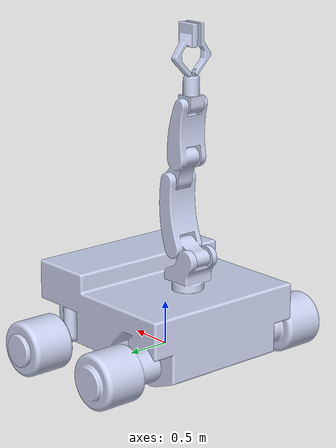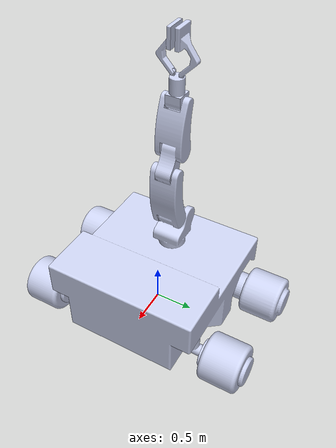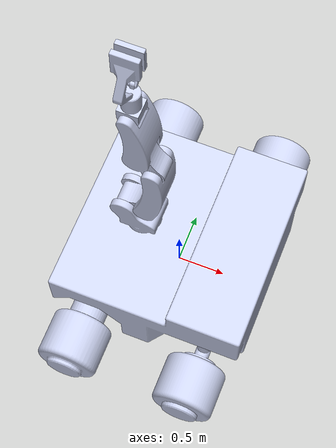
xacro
<?xml version="1.0" encoding="utf-8"?>
<robot
  name="robot_arm">
  <link
    name="base_link">
    <inertial>
      <origin
        xyz="0.05079 0.43644 -3.929E-09"
        rpy="0 0 0" />
      <mass
        value="273.23" />
      <inertia
        ixx="160.51"
        ixy="-15.419"
        ixz="-3.821E-06"
        iyy="285.82"
        iyz="-2.0854E-06"
        izz="189.48" />
    </inertial>
    <visual>
      <origin
        xyz="0 0 0"
        rpy="0 0 0" />
      <geometry>
        <mesh
          filename="package://robot_arm/meshes/base_link.STL" />
      </geometry>
      <material
        name="">
        <color
          rgba="0.79216 0.81961 0.93333 1" />
      </material>
    </visual>
    <collision>
      <origin
        xyz="0 0 0"
        rpy="0 0 0" />
      <geometry>
        <mesh
          filename="package://robot_arm/meshes/base_link.STL" />
      </geometry>
    </collision>
  </link>
  <link
    name="rear_transmission">
    <inertial>
      <origin
        xyz="-3.9489E-15 -2.7756E-17 0"
        rpy="0 0 0" />
      <mass
        value="38.804" />
      <inertia
        ixx="2.6008"
        ixy="-1.8244E-15"
        ixz="-6.4608E-15"
        iyy="100.77"
        iyz="-1.3756E-31"
        izz="100.77" />
    </inertial>
    <visual>
      <origin
        xyz="0 0 0"
        rpy="0 0 0" />
      <geometry>
        <mesh
          filename="package://robot_arm/meshes/rear_transmission.STL" />
      </geometry>
      <material
        name="">
        <color
          rgba="0.79216 0.81961 0.93333 1" />
      </material>
    </visual>
    <collision>
      <origin
        xyz="0 0 0"
        rpy="0 0 0" />
      <geometry>
        <mesh
          filename="package://robot_arm/meshes/rear_transmission.STL" />
      </geometry>
    </collision>
  </link>
  <joint
    name="rear_transmission_joint"
    type="continuous">
    <origin
      xyz="-0.625 0 0.125"
      rpy="-1.5708 0 -1.5708" />
    <parent
      link="base_link" />
    <child
      link="rear_transmission" />
    <axis
      xyz="1 0 0" />
  </joint>
  <link
    name="front_left_pivot">
    <inertial>
      <origin
        xyz="-5.2398E-07 0.19906 -0.33437"
        rpy="0 0 0" />
      <mass
        value="5.4" />
      <inertia
        ixx="0.99062"
        ixy="1.52E-08"
        ixz="3.0168E-08"
        iyy="0.67248"
        iyz="-0.25753"
        izz="0.43151" />
    </inertial>
    <visual>
      <origin
        xyz="0 0 0"
        rpy="0 0 0" />
      <geometry>
        <mesh
          filename="package://robot_arm/meshes/front_left_pivot.STL" />
      </geometry>
      <material
        name="">
        <color
          rgba="0.79216 0.81961 0.93333 1" />
      </material>
    </visual>
    <collision>
      <origin
        xyz="0 0 0"
        rpy="0 0 0" />
      <geometry>
        <mesh
          filename="package://robot_arm/meshes/front_left_pivot.STL" />
      </geometry>
    </collision>
  </link>
  <joint
    name="front_left_pivot_joint"
    type="continuous">
    <origin
      xyz="0.62278 0.875 0"
      rpy="1.5708 0 0" />
    <parent
      link="base_link" />
    <child
      link="front_left_pivot" />
    <axis
      xyz="0 1 0" />
  </joint>
  <link
    name="front_left_wheel">
    <inertial>
      <origin
        xyz="0.25 0 -4.6629E-15"
        rpy="0 0 0" />
      <mass
        value="9.056" />
      <inertia
        ixx="1.0932"
        ixy="-5.7774E-33"
        ixz="-6.5206E-16"
        iyy="0.91001"
        iyz="2.2598E-33"
        izz="0.91001" />
    </inertial>
    <visual>
      <origin
        xyz="0 0 0"
        rpy="0 0 0" />
      <geometry>
        <mesh
          filename="package://robot_arm/meshes/front_left_wheel.STL" />
      </geometry>
      <material
        name="">
        <color
          rgba="0.79216 0.81961 0.93333 1" />
      </material>
    </visual>
    <collision>
      <origin
        xyz="0 0 0"
        rpy="0 0 0" />
      <geometry>
        <mesh
          filename="package://robot_arm/meshes/front_left_wheel.STL" />
      </geometry>
    </collision>
  </link>
  <joint
    name="front_left_wheel_joint"
    type="continuous">
    <origin
      xyz="0 0.125 -0.1875"
      rpy="0 1.5708 0" />
    <parent
      link="front_left_pivot" />
    <child
      link="front_left_wheel" />
    <axis
      xyz="1 0 0" />
  </joint>
  <link
    name="front_right_pivot">
    <inertial>
      <origin
        xyz="-5.2398E-07 0.19906 -0.33437"
        rpy="0 0 0" />
      <mass
        value="5.4" />
      <inertia
        ixx="0.99062"
        ixy="1.52E-08"
        ixz="3.0168E-08"
        iyy="0.67248"
        iyz="-0.25753"
        izz="0.43151" />
    </inertial>
    <visual>
      <origin
        xyz="0 0 0"
        rpy="0 0 0" />
      <geometry>
        <mesh
          filename="package://robot_arm/meshes/front_right_pivot.STL" />
      </geometry>
      <material
        name="">
        <color
          rgba="0.79216 0.81961 0.93333 1" />
      </material>
    </visual>
    <collision>
      <origin
        xyz="0 0 0"
        rpy="0 0 0" />
      <geometry>
        <mesh
          filename="package://robot_arm/meshes/front_right_pivot.STL" />
      </geometry>
    </collision>
  </link>
  <joint
    name="front_right_pivot_joint"
    type="continuous">
    <origin
      xyz="0.62278 -0.875 0"
      rpy="1.5708 0 3.1416" />
    <parent
      link="base_link" />
    <child
      link="front_right_pivot" />
    <axis
      xyz="0 1 0" />
  </joint>
  <link
    name="front_right_wheel">
    <inertial>
      <origin
        xyz="-0.25 2.9143E-16 4.5519E-15"
        rpy="0 0 0" />
      <mass
        value="9.056" />
      <inertia
        ixx="1.0932"
        ixy="-3.8516E-33"
        ixz="-6.5206E-16"
        iyy="0.91001"
        iyz="2.2598E-33"
        izz="0.91001" />
    </inertial>
    <visual>
      <origin
        xyz="0 0 0"
        rpy="0 0 0" />
      <geometry>
        <mesh
          filename="package://robot_arm/meshes/front_right_wheel.STL" />
      </geometry>
      <material
        name="">
        <color
          rgba="0.79216 0.81961 0.93333 1" />
      </material>
    </visual>
    <collision>
      <origin
        xyz="0 0 0"
        rpy="0 0 0" />
      <geometry>
        <mesh
          filename="package://robot_arm/meshes/front_right_wheel.STL" />
      </geometry>
    </collision>
  </link>
  <joint
    name="front_right_wheel_joint"
    type="continuous">
    <origin
      xyz="0 0.125 -0.1875"
      rpy="3.1416 -1.5708 0" />
    <parent
      link="front_right_pivot" />
    <child
      link="front_right_wheel" />
    <axis
      xyz="1 0 0" />
  </joint>
  <link
    name="rotating_arm">
    <inertial>
      <origin
        xyz="-8.0067E-09 0.22058 -0.042397"
        rpy="0 0 0" />
      <mass
        value="16.073" />
      <inertia
        ixx="0.15042"
        ixy="-4.406E-09"
        ixz="3.0039E-08"
        iyy="0.16036"
        iyz="0.03538"
        izz="0.15404" />
    </inertial>
    <visual>
      <origin
        xyz="0 0 0"
        rpy="0 0 0" />
      <geometry>
        <mesh
          filename="package://robot_arm/meshes/rotating_arm.STL" />
      </geometry>
      <material
        name="">
        <color
          rgba="0.79216 0.81961 0.93333 1" />
      </material>
    </visual>
    <collision>
      <origin
        xyz="0 0 0"
        rpy="0 0 0" />
      <geometry>
        <mesh
          filename="package://robot_arm/meshes/rotating_arm.STL" />
      </geometry>
    </collision>
  </link>
  <joint
    name="rotating_arm_joint"
    type="revolute">
    <origin
      xyz="-0.37722 0 0.75"
      rpy="1.5708 0 1.5708" />
    <parent
      link="base_link" />
    <child
      link="rotating_arm" />
    <axis
      xyz="0 1 0" />
    <limit
      lower="-1.15"
      upper="1.15"
      effort="30"
      velocity="0.2" />
  </joint>
  <link
    name="extending_arm">
    <inertial>
      <origin
        xyz="-4.3203E-16 -0.38189 0.26262"
        rpy="0 0 0" />
      <mass
        value="5.246" />
      <inertia
        ixx="0.82536"
        ixy="-4.5108E-16"
        ixz="8.3461E-16"
        iyy="0.22895"
        iyz="0.1708"
        izz="0.83089" />
    </inertial>
    <visual>
      <origin
        xyz="0 0 0"
        rpy="0 0 0" />
      <geometry>
        <mesh
          filename="package://robot_arm/meshes/extending_arm.STL" />
      </geometry>
      <material
        name="">
        <color
          rgba="0.79216 0.81961 0.93333 1" />
      </material>
    </visual>
    <collision>
      <origin
        xyz="0 0 0"
        rpy="0 0 0" />
      <geometry>
        <mesh
          filename="package://robot_arm/meshes/extending_arm.STL" />
      </geometry>
    </collision>
  </link>
  <joint
    name="extending_arm_joint"
    type="revolute">
    <origin
      xyz="0 0.38 -0.1539"
      rpy="-0.016689 0 3.1416" />
    <parent
      link="rotating_arm" />
    <child
      link="extending_arm" />
    <axis
      xyz="1 0 0" />
    <limit
      lower="0"
      upper="0.1"
      effort="30"
      velocity="0.1" />
  </joint>
  <link
    name="picking_arm">
    <inertial>
      <origin
        xyz="0.21069 0.37923 -4.7848E-16"
        rpy="0 0 0" />
      <mass
        value="2.7472" />
      <inertia
        ixx="0.61578"
        ixy="-0.21275"
        ixz="-1.3361E-16"
        iyy="0.21938"
        iyz="1.0997E-15"
        izz="0.65117" />
    </inertial>
    <visual>
      <origin
        xyz="0 0 0"
        rpy="0 0 0" />
      <geometry>
        <mesh
          filename="package://robot_arm/meshes/picking_arm.STL" />
      </geometry>
      <material
        name="">
        <color
          rgba="0.79216 0.81961 0.93333 1" />
      </material>
    </visual>
    <collision>
      <origin
        xyz="0 0 0"
        rpy="0 0 0" />
      <geometry>
        <mesh
          filename="package://robot_arm/meshes/picking_arm.STL" />
      </geometry>
    </collision>
  </link>
  <joint
    name="picking_arm_joint"
    type="revolute">
    <origin
      xyz="0 -0.84976 0.30067"
      rpy="1.5708 1.3576 -1.5708" />
    <parent
      link="extending_arm" />
    <child
      link="picking_arm" />
    <axis
      xyz="0 0 1" />
    <limit
      lower="0"
      upper="2.5"
      effort="30000"
      velocity="0.1" />
  </joint>
  <link
    name="jaw_arm">
    <inertial>
      <origin
        xyz="0.10169 -6.1062E-16 -2.1115E-15"
        rpy="0 0 0" />
      <mass
        value="0.7878" />
      <inertia
        ixx="0.0096899"
        ixy="-6.6155E-17"
        ixz="1.3752E-18"
        iyy="0.027661"
        iyz="3.5404E-20"
        izz="0.027738" />
    </inertial>
    <visual>
      <origin
        xyz="0 0 0"
        rpy="0 0 0" />
      <geometry>
        <mesh
          filename="package://robot_arm/meshes/jaw_arm.STL" />
      </geometry>
      <material
        name="">
        <color
          rgba="0.79216 0.81961 0.93333 1" />
      </material>
    </visual>
    <collision>
      <origin
        xyz="0 0 0"
        rpy="0 0 0" />
      <geometry>
        <mesh
          filename="package://robot_arm/meshes/jaw_arm.STL" />
      </geometry>
    </collision>
  </link>
  <joint
    name="jaw_arm_joint"
    type="revolute">
    <origin
      xyz="0.39805 0.79363 0"
      rpy="3.1416 0 1.3409" />
    <parent
      link="picking_arm" />
    <child
      link="jaw_arm" />
    <axis
      xyz="0 0 1" />
    <limit
      lower="-1.15"
      upper="1.15"
      effort="30"
      velocity="0.1" />
  </joint>
  <link
    name="left_jaw">
    <inertial>
      <origin
        xyz="-2.2815E-08 0.32731 -0.038494"
        rpy="0 0 0" />
      <mass
        value="0.14771" />
      <inertia
        ixx="0.1259"
        ixy="-3.6284E-09"
        ixz="-1.839E-09"
        iyy="0.035165"
        iyz="-0.026696"
        izz="0.12677" />
    </inertial>
    <visual>
      <origin
        xyz="0 0 0"
        rpy="0 0 0" />
      <geometry>
        <mesh
          filename="package://robot_arm/meshes/left_jaw.STL" />
      </geometry>
      <material
        name="">
        <color
          rgba="0.79216 0.81961 0.93333 1" />
      </material>
    </visual>
    <collision>
      <origin
        xyz="0 0 0"
        rpy="0 0 0" />
      <geometry>
        <mesh
          filename="package://robot_arm/meshes/left_jaw.STL" />
      </geometry>
    </collision>
  </link>
  <joint
    name="left_jaw_joint"
    type="revolute">
    <origin
      xyz="0.335 0 -0.055"
      rpy="0 0 -1.5708" />
    <parent
      link="jaw_arm" />
    <child
      link="left_jaw" />
    <axis
      xyz="1 0 0" />
    <limit
      lower="-1.15"
      upper="1.15"
      effort="30"
      velocity="0.1" />
  </joint>
  <link
    name="right_jaw">
    <inertial>
      <origin
        xyz="-2.2013E-08 0.32731 -0.038494"
        rpy="0 0 0" />
      <mass
        value="0.14771" />
      <inertia
        ixx="0.1259"
        ixy="-3.4619E-09"
        ixz="-1.7716E-09"
        iyy="0.035165"
        iyz="-0.026696"
        izz="0.12677" />
    </inertial>
    <visual>
      <origin
        xyz="0 0 0"
        rpy="0 0 0" />
      <geometry>
        <mesh
          filename="package://robot_arm/meshes/right_jaw.STL" />
      </geometry>
      <material
        name="">
        <color
          rgba="0.79216 0.81961 0.93333 1" />
      </material>
    </visual>
    <collision>
      <origin
        xyz="0 0 0"
        rpy="0 0 0" />
      <geometry>
        <mesh
          filename="package://robot_arm/meshes/right_jaw.STL" />
      </geometry>
    </collision>
  </link>
  <joint
    name="right_jaw_joint"
    type="revolute">
    <origin
      xyz="0.335 0 0.055"
      rpy="-3.1211 0 1.5708" />
    <parent
      link="jaw_arm" />
    <child
      link="right_jaw" />
    <axis
      xyz="1 0 0" />
    <limit
      lower="-1.15"
      upper="1.15"
      effort="30"
      velocity="0.1" />
  </joint>

  <transmission name="rear_wheel_transmission">
    <type>transmission_interface/SimpleTransmission</type>
    <joint name="rear_transmission_joint">
      <hardwareInterface>hardware_interface/VelocityJointInterface</hardwareInterface>
    </joint>
    <actuator name="back_motor">
      <hardwareInterface>hardware_interface/VelocityJointInterface</hardwareInterface>
      <mechanicalReduction>1</mechanicalReduction>
    </actuator>
  </transmission>

  <transmission name="front_left_pivot_transmission">
    <type>transmission_interface/SimpleTransmission</type>
    <joint name="front_left_pivot_joint">
      <hardwareInterface>hardware_interface/EffortJointInterface</hardwareInterface>
    </joint>
    <actuator name="front_left_pivot_motor">
      <hardwareInterface>hardware_interface/EffortJointInterface</hardwareInterface>
      <mechanicalReduction>1</mechanicalReduction>
    </actuator>
  </transmission>

  <transmission name="front_right_pivot_transmission">
    <type>transmission_interface/SimpleTransmission</type>
    <joint name="front_right_pivot_joint">
      <hardwareInterface>hardware_interface/EffortJointInterface</hardwareInterface>
    </joint>
    <actuator name="front_right_pivot_motor">
      <hardwareInterface>hardware_interface/EffortJointInterface</hardwareInterface>
      <mechanicalReduction>1</mechanicalReduction>
    </actuator>
  </transmission>

  <transmission name="front_right_wheel_transmission">
    <type>transmission_interface/SimpleTransmission</type>
    <joint name="front_right_wheel_joint">
      <hardwareInterface>hardware_interface/EffortJointInterface</hardwareInterface>
    </joint>
    <actuator name="front_right_wheel_motor">
      <hardwareInterface>hardware_interface/EffortJointInterface</hardwareInterface>
      <mechanicalReduction>1</mechanicalReduction>
    </actuator>
  </transmission>

  <transmission name="front_left_wheel_transmission">
    <type>transmission_interface/SimpleTransmission</type>
    <joint name="front_left_wheel_joint">
      <hardwareInterface>hardware_interface/EffortJointInterface</hardwareInterface>
    </joint>
    <actuator name="front_left_wheel_motor">
      <hardwareInterface>hardware_interface/EffortJointInterface</hardwareInterface>
      <mechanicalReduction>1</mechanicalReduction>
    </actuator>
  </transmission>

  <transmission name="rotating_arm_transmission">
    <type>transmission_interface/SimpleTransmission</type>
    <joint name="rotating_arm_joint">
      <hardwareInterface>hardware_interface/EffortJointInterface</hardwareInterface>
    </joint>
    <actuator name="rotating_arm_motor">
      <hardwareInterface>hardware_interface/EffortJointInterface</hardwareInterface>
      <mechanicalReduction>1</mechanicalReduction>
    </actuator>
  </transmission>

  <transmission name="extending_arm_transmission">
    <type>transmission_interface/SimpleTransmission</type>
    <joint name="extending_arm_joint">
      <hardwareInterface>hardware_interface/EffortJointInterface</hardwareInterface>
    </joint>
    <actuator name="extending_arm_motor">
      <hardwareInterface>hardware_interface/EffortJointInterface</hardwareInterface>
      <mechanicalReduction>1</mechanicalReduction>
    </actuator>
  </transmission>

  <transmission name="picking_arm_transmission">
    <type>transmission_interface/SimpleTransmission</type>
    <joint name="picking_arm_joint">
      <hardwareInterface>hardware_interface/EffortJointInterface</hardwareInterface>
    </joint>
    <actuator name="picking_arm_motor">
      <hardwareInterface>hardware_interface/EffortJointInterface</hardwareInterface>
      <mechanicalReduction>1</mechanicalReduction>
    </actuator>
  </transmission>

  <transmission name="jaw_arm_transmission">
    <type>transmission_interface/SimpleTransmission</type>
    <joint name="jaw_arm_joint">
      <hardwareInterface>hardware_interface/EffortJointInterface</hardwareInterface>
    </joint>
    <actuator name="jaw_arm_motor">
      <hardwareInterface>hardware_interface/EffortJointInterface</hardwareInterface>
      <mechanicalReduction>1</mechanicalReduction>
    </actuator>
  </transmission>

  <transmission name="left_jaw_transmission">
    <type>transmission_interface/SimpleTransmission</type>
    <joint name="left_jaw_joint">
      <hardwareInterface>hardware_interface/EffortJointInterface</hardwareInterface>
    </joint>
    <actuator name="left_jaw_motor">
      <hardwareInterface>hardware_interface/EffortJointInterface</hardwareInterface>
      <mechanicalReduction>1</mechanicalReduction>
    </actuator>
  </transmission>

  <transmission name="right_jaw_transmission">
    <type>transmission_interface/SimpleTransmission</type>
    <joint name="right_jaw_joint">
      <hardwareInterface>hardware_interface/EffortJointInterface</hardwareInterface>
    </joint>
    <actuator name="right_jaw_motor">
      <hardwareInterface>hardware_interface/EffortJointInterface</hardwareInterface>
      <mechanicalReduction>1</mechanicalReduction>
    </actuator>
  </transmission>

</robot>
